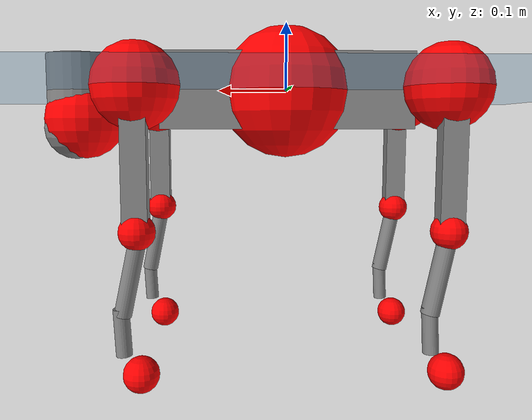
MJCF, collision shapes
<mujoco model="go2">
  <compiler angle="radian" assetdir="assets" balanceinertia="true" inertiafromgeom="false"/>

  <option timestep="0.005" density="1.2" viscosity="2e-05"/>

  <size nkey="1"/>

  <visual>
    <quality shadowsize="8192"/>
    <map shadowclip="0.5"/>
  </visual>

  <default>
    <default class="/">
      <geom contype="0" conaffinity="0" group="1" solref="-1000 -80"/>
      <site size="0.01 0.005 0.005" group="5"/>
      <general forcelimited="true" biastype="affine" gainprm="20" biasprm="0 -20 -0.5"/>
      <default class="go2">
        <joint armature="0.01" damping="0.01" frictionloss="0.2"/>
        <geom condim="1" margin="0.001"/>
        <default class="visual">
          <geom type="mesh" group="2"/>
        </default>
        <default class="collision">
          <geom group="3"/>
          <default class="foot">
            <geom size="0.022 0 0" condim="6" priority="1" friction="0.8 0.02 0.01" solimp="0.015 1 0.022"/>
          </default>
        </default>
        <default class="reward_collision_sphere">
          <geom group="5" rgba="1 0 0 1"/>
        </default>
      </default>
    </default>
  </default>

  <asset>
    <texture type="skybox" colorspace="auto" name="//unnamed_texture_0" builtin="gradient" rgb1="0.95 0.95 0.95" rgb2="0.95 0.95 0.95" width="100" height="600"/>
    <texture type="2d" colorspace="auto" name="texplane" builtin="checker" rgb1="0.345 0.575 0.748" rgb2="0.345 0.575 0.748" markrgb="1 1 1" width="512" height="512"/>
    <material name="MatPlane" class="/" texture="texplane" texuniform="true" texrepeat="2 2" specular="0.9"/>
    <material name="metal" class="/" rgba="0.9 0.95 0.95 1"/>
    <material name="black" class="/" rgba="0 0 0 1"/>
    <material name="white" class="/"/>
    <material name="gray" class="/" rgba="0.671705 0.692426 0.77427 1"/>
    <mesh name="base_0" class="/" file="base_0.obj"/>
    <mesh name="base_1" class="/" file="base_1.obj"/>
    <mesh name="base_2" class="/" file="base_2.obj"/>
    <mesh name="base_3" class="/" file="base_3.obj"/>
    <mesh name="base_4" class="/" file="base_4.obj"/>
    <mesh name="hip_0" class="/" file="hip_0.obj"/>
    <mesh name="hip_1" class="/" file="hip_1.obj"/>
    <mesh name="thigh_0" class="/" file="thigh_0.obj"/>
    <mesh name="thigh_1" class="/" file="thigh_1.obj"/>
    <mesh name="thigh_mirror_0" class="/" file="thigh_mirror_0.obj"/>
    <mesh name="thigh_mirror_1" class="/" file="thigh_mirror_1.obj"/>
    <mesh name="calf_0" class="/" file="calf_0.obj"/>
    <mesh name="calf_1" class="/" file="calf_1.obj"/>
    <mesh name="calf_mirror_0" class="/" file="calf_mirror_0.obj"/>
    <mesh name="calf_mirror_1" class="/" file="calf_mirror_1.obj"/>
    <mesh name="foot" class="/" file="foot.obj"/>
  </asset>

  <worldbody>
    <geom name="floor" class="/" size="100 100 0.125" type="plane" group="0" material="MatPlane"/>
    <light name="toplight_shadow" class="/" pos="0 0 5" dir="0.0990148 0.0990148 -0.990148" type="directional" ambient="0.04 0.04 0.04" diffuse="0.55 0.55 0.55" specular="0.12 0.12 0.12"/>
    <light name="toplight_fill" class="/" pos="0 0 5" dir="0.0990148 0.0990148 -0.990148" type="directional" castshadow="false" ambient="0.04 0.04 0.04" diffuse="0.3 0.3 0.3" specular="0.08 0.08 0.08"/>
    <body name="trunk" childclass="go2" pos="0.000469628 0.000207984 -0.00135928" quat="1 -0.000147929 -0.000126578 0.00044774">
      <inertial pos="0.0229823 0.000604135 -0.00495132" quat="-0.00188213 0.71094 -0.000137105 0.703251" mass="6.50992" diaginertia="0.14629 0.0811018 0.0143286"/>
      <joint name="//unnamed_joint_0" type="free" armature="0" damping="0" frictionloss="0"/>
      <geom name="//unnamed_geom_1" class="visual" material="black" mesh="base_0"/>
      <geom name="//unnamed_geom_2" class="visual" material="black" mesh="base_1"/>
      <geom name="//unnamed_geom_3" class="visual" material="black" mesh="base_2"/>
      <geom name="//unnamed_geom_4" class="visual" material="white" mesh="base_3"/>
      <geom name="//unnamed_geom_5" class="visual" material="gray" mesh="base_4"/>
      <geom name="trunk_1" class="collision" size="0.182916 0.0454616 0.0554292" type="box"/>
      <geom name="trunk_2" class="collision" size="0.0486221 0.0437599" pos="0.302547 0 0.00895857" type="cylinder"/>
      <geom name="trunk_3" class="collision" size="0.0457047" pos="0.311039 0 -0.0537514"/>
      <geom name="//unnamed_geom_9" class="reward_collision_sphere" size="0.0972441"/>
      <geom name="//unnamed_geom_10" class="reward_collision_sphere" size="0.0583465" pos="0.297239 0 -0.0403135"/>
      <site name="imu" pos="-0.0250423 -0.00428885 0.0381044" size="0.00972441"/>
      <camera name="track" pos="0 -1.9198 0" quat="0.707107 0.707107 0 0" mode="trackcom"/>
      <camera name="ego_camera" pos="0.331209 0 0.0403135" quat="-0.5 -0.5 0.5 0.5"/>
      <body name="FL_hip" pos="0.204456 0.0437204 0.000822784" quat="1 0.000157597 9.29228e-05 -1.10778e-05">
        <inertial pos="-0.00619189 0.00186397 -0.0018275" quat="0.499564 0.493813 0.50693 0.499607" mass="0.629903" diaginertia="0.00120075 0.000492437 0.000280136"/>
        <joint name="FL_hip_joint" pos="0 0 0" axis="0.999994 -0.00322666 0.000769485" range="-1.05044 1.0307" armature="0.00974562" damping="0.00481608" frictionloss="0.185343"/>
        <geom name="//unnamed_geom_11" class="visual" material="metal" mesh="hip_0"/>
        <geom name="//unnamed_geom_12" class="visual" material="gray" mesh="hip_1"/>
        <geom name="//unnamed_geom_13" class="collision" size="0.0447323 0.0194488" pos="0 0.0767919 0" quat="0.707107 0.707107 0 0" type="cylinder"/>
        <geom name="//unnamed_geom_14" class="reward_collision_sphere" size="0.0583465" pos="0 0.0671929 0"/>
        <body name="FL_thigh" pos="-0.00101863 0.0904474 0.0020425" quat="1 -5.70713e-05 0.000150311 -0.000110212">
          <inertial pos="-0.00407882 -0.021199 -0.0287984" quat="0.829502 0.082756 -0.019733 0.551985" mass="1.0549" diaginertia="0.00800385 0.00473065 0.000503047"/>
          <joint name="FL_thigh_joint" pos="0 0 0" axis="0.0066805 0.999966 -0.00484359" stiffness="0.00204175" range="-1.55138 3.4885" armature="0.00986471" damping="0.00606987" frictionloss="0.194188"/>
          <geom name="//unnamed_geom_15" class="visual" material="metal" mesh="thigh_0"/>
          <geom name="//unnamed_geom_16" class="visual" material="gray" mesh="thigh_1"/>
          <geom name="//unnamed_geom_17" class="collision" size="0.103565 0.0119124 0.0165315" pos="0 0 -0.0954087" quat="0.707107 0 0.707107 0" type="box"/>
          <body name="FL_calf" pos="-0.000956056 -0.00061812 -0.190561" quat="1 3.14017e-05 4.84544e-05 -5.88406e-05">
            <inertial pos="0.00499252 -0.00149899 -0.126224" quat="0.710361 0.00279906 -0.00475865 0.703816" mass="0.223339" diaginertia="0.00199501 0.00120168 3.07029e-05"/>
            <joint name="FL_calf_joint" pos="0 0 0" axis="0.00127174 0.999999 -0.000490212" stiffness="0.00632743" range="-2.75924 -0.85359" armature="0.00961037" damping="0.0105523" frictionloss="0.209176"/>
            <geom name="//unnamed_geom_18" class="visual" material="gray" mesh="calf_0"/>
            <geom name="//unnamed_geom_19" class="visual" material="black" mesh="calf_1"/>
            <geom name="FL_calf0" class="collision" size="0.0116693 0.0583465" pos="0.00849255 0 -0.0537514" quat="0.994493 0 -0.104807 0" type="cylinder"/>
            <geom name="//unnamed_geom_21" class="collision" size="0.0106969 0.0316043" pos="0.0212314 0 -0.132587" quat="0.999688 0 0.0249974 0" type="cylinder"/>
            <geom name="//unnamed_geom_22" class="visual" pos="0 0 -0.190817" quat="1 0 0 0" material="black" mesh="foot"/>
            <geom name="FL_foot" class="foot" size="0.0174326" pos="-0.00212314 0 -0.190817"/>
            <geom name="//unnamed_geom_24" class="reward_collision_sphere" size="0.024311"/>
            <geom name="//unnamed_geom_25" class="reward_collision_sphere" size="0.024311" pos="-0.00212314 0 -0.190817"/>
            <site name="FL_foot" class="foot" pos="-0.00212314 0 -0.190817" size="0.00972441"/>
          </body>
        </body>
      </body>
      <body name="FR_hip" pos="0.205908 -0.0448421 -0.000379588" quat="1 0.000110226 0.000865521 4.08176e-05">
        <inertial pos="-0.00511933 -0.00169161 -0.000774408" quat="0.496636 0.510582 0.494585 0.49804" mass="0.637606" diaginertia="0.00120446 0.000489186 0.000280012"/>
        <joint name="FR_hip_joint" pos="0 0 0" axis="0.999998 -0.00208722 -0.000702908" range="-1.07499 1.06841" armature="0.00973349" damping="0.0120875" frictionloss="0.188073"/>
        <geom name="//unnamed_geom_26" class="visual" pos="0 5.57912e-10 2.393e-08" quat="4.63268e-05 1 0 0" material="metal" mesh="hip_0"/>
        <geom name="//unnamed_geom_27" class="visual" pos="0 9.04442e-10 -5.9188e-08" quat="4.63268e-05 1 0 0" material="gray" mesh="hip_1"/>
        <geom name="//unnamed_geom_28" class="collision" size="0.0447323 0.0194488" pos="0 -0.0767919 0" quat="0.707107 0.707107 0 0" type="cylinder"/>
        <geom name="//unnamed_geom_29" class="reward_collision_sphere" size="0.0583465" pos="0 -0.0671929 0"/>
        <body name="FR_thigh" pos="8.90675e-05 -0.0910208 0.00222814" quat="1 -0.000341214 -0.000174831 -5.98196e-05">
          <inertial pos="-0.00361436 0.021116 -0.0283864" quat="0.551373 -0.0198529 0.0855778 0.82962" mass="1.05801" diaginertia="0.00798997 0.00475312 0.000501358"/>
          <joint name="FR_thigh_joint" pos="0 0 0" axis="-0.00178483 -0.999992 0.00348581" stiffness="0.00216397" range="-3.48969 1.58654" armature="0.0101944" damping="0.00598071" frictionloss="0.194554"/>
          <geom name="//unnamed_geom_30" class="visual" material="metal" mesh="thigh_mirror_0"/>
          <geom name="//unnamed_geom_31" class="visual" material="gray" mesh="thigh_mirror_1"/>
          <geom name="//unnamed_geom_32" class="collision" size="0.103565 0.0119124 0.0165315" pos="0 0 -0.0954087" quat="0.707107 0 0.707107 0" type="box"/>
          <body name="FR_calf" pos="-0.00128259 0.000225785 -0.190495" quat="1 5.32022e-05 -0.000179873 4.97725e-05">
            <inertial pos="0.00646972 -8.15617e-05 -0.126682" quat="0.705813 0.00153126 0.00562318 0.708374" mass="0.218058" diaginertia="0.00198969 0.0011879 3.05935e-05"/>
            <joint name="FR_calf_joint" pos="0 0 0" axis="8.28123e-06 -1 0.000257939" range="0.840644 2.71904" armature="0.00961147" damping="0.00436553" frictionloss="0.203972"/>
            <geom name="//unnamed_geom_33" class="visual" material="gray" mesh="calf_mirror_0"/>
            <geom name="//unnamed_geom_34" class="visual" material="black" mesh="calf_mirror_1"/>
            <geom name="FR_calf0" class="collision" size="0.0126417 0.0583465" pos="0.0106157 0 -0.0537514" quat="0.995004 0 -0.0998334 0" type="cylinder"/>
            <geom name="//unnamed_geom_36" class="collision" size="0.0106969 0.0316043" pos="0.0212314 0 -0.132587" quat="0.999688 0 0.0249974 0" type="cylinder"/>
            <geom name="//unnamed_geom_37" class="visual" pos="0 0 -0.190817" quat="1 0 0 0" material="black" mesh="foot"/>
            <geom name="FR_foot" class="foot" size="0.0213613" pos="-0.00212314 0 -0.190817"/>
            <geom name="//unnamed_geom_39" class="reward_collision_sphere" size="0.024311"/>
            <geom name="//unnamed_geom_40" class="reward_collision_sphere" size="0.024311" pos="-0.00212314 0 -0.190817"/>
            <site name="FR_foot" class="foot" pos="-0.00212314 0 -0.190817" size="0.00972441"/>
          </body>
        </body>
      </body>
      <body name="RL_hip" pos="-0.205641 0.0451113 0.00100655" quat="1 6.06579e-06 0.000104492 8.44225e-05">
        <inertial pos="0.00593479 0.00171721 -0.00129439" quat="0.502632 0.499606 0.499263 0.498489" mass="0.627379" diaginertia="0.00121921 0.000485979 0.0002803"/>
        <joint name="RL_hip_joint" pos="0 0 0" axis="-0.999811 -0.0191235 0.00341983" stiffness="0.00334773" range="-1.06018 1.06251" armature="0.00991164" damping="0.012353" frictionloss="0.195076"/>
        <geom name="//unnamed_geom_41" class="visual" pos="-1.44361e-09 0 -2.82981e-07" quat="4.63268e-05 0 1 0" material="metal" mesh="hip_0"/>
        <geom name="//unnamed_geom_42" class="visual" pos="-2.34027e-09 0 -2.50964e-07" quat="4.63268e-05 0 1 0" material="gray" mesh="hip_1"/>
        <geom name="//unnamed_geom_43" class="collision" size="0.0447323 0.0194488" pos="0 0.0767919 0" quat="0.707107 0.707107 0 0" type="cylinder"/>
        <geom name="//unnamed_geom_44" class="reward_collision_sphere" size="0.0583465" pos="0 0.0671929 0"/>
        <body name="RL_thigh" pos="0.000880767 0.0904577 0.00101099" quat="1 -3.34252e-05 0.000105795 -8.67928e-05">
          <inertial pos="-0.00228334 -0.0208814 -0.0308214" quat="0.829451 0.0846682 -0.0202168 0.551755" mass="1.08597" diaginertia="0.0082979 0.004896 0.00051489"/>
          <joint name="RL_thigh_joint" pos="0 0 0" axis="0.0104787 0.999915 0.00778864" range="-0.510269 4.5347" armature="0.0096318" damping="0.00102477" frictionloss="0.185412"/>
          <geom name="//unnamed_geom_45" class="visual" material="metal" mesh="thigh_0"/>
          <geom name="//unnamed_geom_46" class="visual" material="gray" mesh="thigh_1"/>
          <geom name="//unnamed_geom_47" class="collision" size="0.103565 0.0119124 0.0165315" pos="0 0 -0.0954087" quat="0.707107 0 0.707107 0" type="box"/>
          <body name="RL_calf" pos="-6.69355e-05 -0.00137891 -0.190851" quat="1 8.23658e-05 -5.01224e-05 -6.42746e-05">
            <inertial pos="0.00538771 -0.000724197 -0.128248" quat="0.710066 -0.00164553 -0.00232359 0.704129" mass="0.222353" diaginertia="0.00201507 0.00121295 3.04719e-05"/>
            <joint name="RL_calf_joint" pos="0 0 0" axis="-0.00635394 0.999951 -0.00762437" range="-2.7117 -0.871525" armature="0.0100908" damping="0" frictionloss="0.195751"/>
            <geom name="//unnamed_geom_48" class="visual" material="gray" mesh="calf_0"/>
            <geom name="//unnamed_geom_49" class="visual" material="black" mesh="calf_1"/>
            <geom name="RL_calf0" class="collision" size="0.0126417 0.0583465" pos="0.0106157 0 -0.0537514" quat="0.995004 0 -0.0998334 0" type="cylinder"/>
            <geom name="//unnamed_geom_51" class="collision" size="0.0106969 0.0316043" pos="0.0212314 0 -0.132587" quat="0.999688 0 0.0249974 0" type="cylinder"/>
            <geom name="//unnamed_geom_52" class="visual" pos="0 0 -0.190817" quat="1 0 0 0" material="black" mesh="foot"/>
            <geom name="RL_foot" class="foot" size="0.0189534" pos="-0.00212314 0 -0.190817"/>
            <geom name="//unnamed_geom_54" class="reward_collision_sphere" size="0.024311"/>
            <geom name="//unnamed_geom_55" class="reward_collision_sphere" size="0.024311" pos="-0.00212314 0 -0.190817"/>
            <site name="RL_foot" class="foot" pos="-0.00212314 0 -0.190817" size="0.00972441"/>
          </body>
        </body>
      </body>
      <body name="RR_hip" pos="-0.203932 -0.0452754 0.000936417" quat="1 -0.000164089 -0.00012044 0.000180321">
        <inertial pos="0.00567383 -0.0011072 0.000360197" quat="0.495524 0.498787 0.498993 0.50663" mass="0.620237" diaginertia="0.00122869 0.000492607 0.000278349"/>
        <joint name="RR_hip_joint" pos="0 0 0" axis="-0.999964 0.00734402 -0.00418309" range="-1.02913 1.04832" armature="0.00973963" damping="0.00130421" frictionloss="0.210389"/>
        <geom name="//unnamed_geom_56" class="visual" pos="1.44009e-09 5.57912e-10 -3.06911e-07" quat="2.14617e-09 4.63268e-05 4.63268e-05 -1" material="metal" mesh="hip_0"/>
        <geom name="//unnamed_geom_57" class="visual" pos="2.34897e-09 9.04442e-10 -1.91776e-07" quat="2.14617e-09 4.63268e-05 4.63268e-05 -1" material="gray" mesh="hip_1"/>
        <geom name="//unnamed_geom_58" class="collision" size="0.0447323 0.0194488" pos="0 -0.0767919 0" quat="0.707107 0.707107 0 0" type="cylinder"/>
        <geom name="//unnamed_geom_59" class="reward_collision_sphere" size="0.0583465" pos="0 -0.0671929 0"/>
        <body name="RR_thigh" pos="-0.000127629 -0.0924138 -0.00155606" quat="1 3.67558e-05 -0.000175658 -0.000280102">
          <inertial pos="-0.00328518 0.0224373 -0.0309295" quat="0.552751 -0.0209045 0.0872914 0.828499" mass="1.04359" diaginertia="0.00810439 0.0047751 0.000510463"/>
          <joint name="RR_thigh_joint" pos="0 0 0" axis="-0.000719512 -1 0.000519182" range="-4.53691 0.526983" armature="0.00986945" damping="0.0224852" frictionloss="0.195037"/>
          <geom name="//unnamed_geom_60" class="visual" material="metal" mesh="thigh_mirror_0"/>
          <geom name="//unnamed_geom_61" class="visual" material="gray" mesh="thigh_mirror_1"/>
          <geom name="//unnamed_geom_62" class="collision" size="0.103565 0.0119124 0.0165315" pos="0 0 -0.0954087" quat="0.707107 0 0.707107 0" type="box"/>
          <body name="RR_calf" pos="6.03264e-05 -0.000123286 -0.192296" quat="1 -0.000697216 -0.000289484 -0.000173912">
            <inertial pos="0.00621254 0.000742466 -0.126726" quat="0.703849 -0.00277814 0.00545105 0.710323" mass="0.21862" diaginertia="0.00197606 0.00116683 2.99765e-05"/>
            <joint name="RR_calf_joint" pos="0 0 0" axis="-0.00957733 -0.999943 0.0046429" range="0.849238 2.72505" armature="0.00982591" damping="0.00625625" frictionloss="0.196003"/>
            <geom name="//unnamed_geom_63" class="visual" material="gray" mesh="calf_mirror_0"/>
            <geom name="//unnamed_geom_64" class="visual" material="black" mesh="calf_mirror_1"/>
            <geom name="RR_calf0" class="collision" size="0.0126417 0.0583465" pos="0.0106157 0 -0.0537514" quat="0.995004 0 -0.0998334 0" type="cylinder"/>
            <geom name="//unnamed_geom_66" class="collision" size="0.0106969 0.0316043" pos="0.0212314 0 -0.132587" quat="0.999688 0 0.0249974 0" type="cylinder"/>
            <geom name="//unnamed_geom_67" class="visual" pos="0 0 -0.190817" quat="1 0 0 0" material="black" mesh="foot"/>
            <geom name="RR_foot" class="foot" size="0.0229667" pos="-0.00212314 0 -0.190817"/>
            <geom name="//unnamed_geom_69" class="reward_collision_sphere" size="0.024311"/>
            <geom name="//unnamed_geom_70" class="reward_collision_sphere" size="0.024311" pos="-0.00212314 0 -0.190817"/>
            <site name="RR_foot" class="foot" pos="-0.00212314 0 -0.190817" size="0.00972441"/>
          </body>
        </body>
      </body>
    </body>
  </worldbody>

  <contact>
    <pair class="/" geom1="floor" geom2="FL_foot" name="//unnamed_contact_0"/>
    <pair class="/" geom1="floor" geom2="FR_foot" name="//unnamed_contact_1"/>
    <pair class="/" geom1="floor" geom2="RL_foot" name="//unnamed_contact_2"/>
    <pair class="/" geom1="floor" geom2="RR_foot" name="//unnamed_contact_3"/>
  </contact>

  <actuator>
    <general name="FL_hip" class="/" joint="FL_hip_joint" forcerange="-23.2613 23.2613" gainprm="19.6833" biasprm="0 -19.6833 -0.492215"/>
    <general name="FL_thigh" class="/" joint="FL_thigh_joint" forcerange="-23.4637 23.4637" gainprm="19.6833" biasprm="0 -19.6833 -0.492215"/>
    <general name="FL_calf" class="/" joint="FL_calf_joint" forcerange="-42.5806 42.5806" gainprm="19.6833" biasprm="0 -19.6833 -0.492215"/>
    <general name="FR_hip" class="/" joint="FR_hip_joint" forcerange="-22.5437 22.5437" gainprm="19.6833" biasprm="0 -19.6833 -0.492215"/>
    <general name="FR_thigh" class="/" joint="FR_thigh_joint" forcerange="-22.2067 22.2067" gainprm="19.6833" biasprm="0 -19.6833 -0.492215"/>
    <general name="FR_calf" class="/" joint="FR_calf_joint" forcerange="-43.7151 43.7151" gainprm="19.6833" biasprm="0 -19.6833 -0.492215"/>
    <general name="RL_hip" class="/" joint="RL_hip_joint" forcerange="-23.0478 23.0478" gainprm="19.6833" biasprm="0 -19.6833 -0.492215"/>
    <general name="RL_thigh" class="/" joint="RL_thigh_joint" forcerange="-21.987 21.987" gainprm="19.6833" biasprm="0 -19.6833 -0.492215"/>
    <general name="RL_calf" class="/" joint="RL_calf_joint" forcerange="-45.3502 45.3502" gainprm="19.6833" biasprm="0 -19.6833 -0.492215"/>
    <general name="RR_hip" class="/" joint="RR_hip_joint" forcerange="-23.0556 23.0556" gainprm="19.6833" biasprm="0 -19.6833 -0.492215"/>
    <general name="RR_thigh" class="/" joint="RR_thigh_joint" forcerange="-23.5808 23.5808" gainprm="19.6833" biasprm="0 -19.6833 -0.492215"/>
    <general name="RR_calf" class="/" joint="RR_calf_joint" forcerange="-43.098 43.098" gainprm="19.6833" biasprm="0 -19.6833 -0.492215"/>
  </actuator>

  <sensor>
    <gyro site="imu" name="imu_angular_velocity"/>
    <velocimeter site="imu" name="imu_linear_velocity"/>
    <framelinvel objtype="site" objname="FL_foot" name="FL_foot_global_linear_velocity"/>
    <framelinvel objtype="site" objname="FR_foot" name="FR_foot_global_linear_velocity"/>
    <framelinvel objtype="site" objname="RL_foot" name="RL_foot_global_linear_velocity"/>
    <framelinvel objtype="site" objname="RR_foot" name="RR_foot_global_linear_velocity"/>
  </sensor>

  <keyframe>
    <key name="home" qpos="0 0 0.325 1 0 0 0 0.1 0.8 -1.5 -0.1 -0.8 1.5 -0.1 0.8 -1.5 0.1 -0.8 1.5"/>
  </keyframe>
</mujoco>
